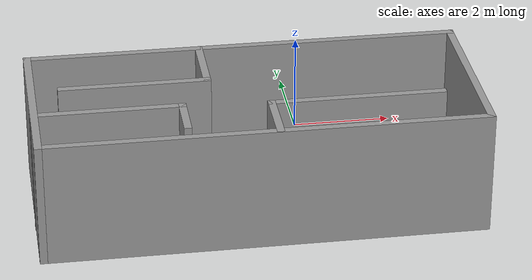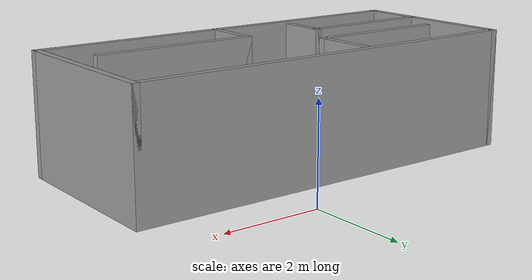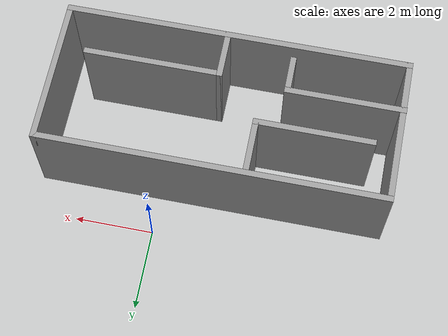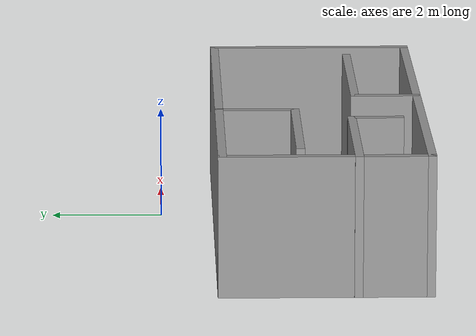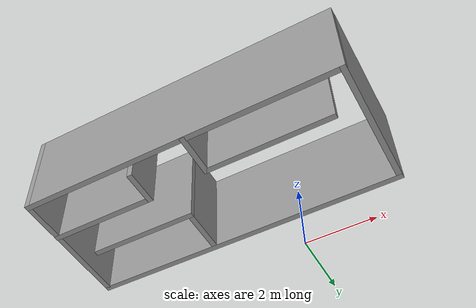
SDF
<?xml version='1.0'?>
<sdf version='1.7'>
  <model name='room'>
    <pose>-1.295 -2.3525 0 0 -0 0</pose>
    <link name='Wall_0'>
      <collision name='Wall_0_Collision'>
        <geometry>
          <box>
            <size>8.75 0.15 2.5</size>
          </box>
        </geometry>
        <pose>0 0 1.25 0 -0 0</pose>
      </collision>
      <visual name='Wall_0_Visual'>
        <pose>0 0 1.25 0 -0 0</pose>
        <geometry>
          <box>
            <size>8.75 0.15 2.5</size>
          </box>
        </geometry>
        <material>
          <script>
            <uri>file://media/materials/scripts/gazebo.material</uri>
            <name>Gazebo/Grey</name>
          </script>
          <ambient>1 1 1 1</ambient>
        </material>
        <meta>
          <layer>0</layer>
        </meta>
      </visual>
      <pose>0.005 1.3225 0 0 -0 0</pose>
    </link>
    <link name='Wall_1'>
      <collision name='Wall_1_Collision'>
        <geometry>
          <box>
            <size>3.75 0.15 2.5</size>
          </box>
        </geometry>
        <pose>0 0 1.25 0 -0 0</pose>
      </collision>
      <visual name='Wall_1_Visual'>
        <pose>0 0 1.25 0 -0 0</pose>
        <geometry>
          <box>
            <size>3.75 0.15 2.5</size>
          </box>
        </geometry>
        <material>
          <script>
            <uri>file://media/materials/scripts/gazebo.material</uri>
            <name>Gazebo/Grey</name>
          </script>
          <ambient>1 1 1 1</ambient>
        </material>
        <meta>
          <layer>0</layer>
        </meta>
      </visual>
      <pose>4.305 -0.4775 0 0 -0 -1.5708</pose>
    </link>
    <link name='Wall_11'>
      <collision name='Wall_11_Collision'>
        <geometry>
          <box>
            <size>1.25 0.15 2.5</size>
          </box>
        </geometry>
        <pose>0 0 1.25 0 -0 0</pose>
      </collision>
      <visual name='Wall_11_Visual'>
        <pose>0 0 1.25 0 -0 0</pose>
        <geometry>
          <box>
            <size>1.25 0.15 2.5</size>
          </box>
        </geometry>
        <material>
          <script>
            <uri>file://media/materials/scripts/gazebo.material</uri>
            <name>Gazebo/Grey</name>
          </script>
          <ambient>1 1 1 1</ambient>
        </material>
        <meta>
          <layer>0</layer>
        </meta>
      </visual>
      <pose>0.255 -1.7075 0 0 -0 1.5708</pose>
    </link>
    <link name='Wall_12'>
      <collision name='Wall_12_Collision'>
        <geometry>
          <box>
            <size>3.5 0.15 2.5</size>
          </box>
        </geometry>
        <pose>0 0 1.25 0 -0 0</pose>
      </collision>
      <visual name='Wall_12_Visual'>
        <pose>0 0 1.25 0 -0 0</pose>
        <geometry>
          <box>
            <size>3.5 0.15 2.5</size>
          </box>
        </geometry>
        <material>
          <script>
            <uri>file://media/materials/scripts/gazebo.material</uri>
            <name>Gazebo/Grey</name>
          </script>
          <ambient>1 1 1 1</ambient>
        </material>
        <meta>
          <layer>0</layer>
        </meta>
      </visual>
      <pose>1.93 -1.1575 0 0 -0 0</pose>
    </link>
    <link name='Wall_2'>
      <collision name='Wall_2_Collision'>
        <geometry>
          <box>
            <size>8.75 0.15 2.5</size>
          </box>
        </geometry>
        <pose>0 0 1.25 0 -0 0</pose>
      </collision>
      <visual name='Wall_2_Visual'>
        <pose>0 0 1.25 0 -0 0</pose>
        <geometry>
          <box>
            <size>8.75 0.15 2.5</size>
          </box>
        </geometry>
        <material>
          <script>
            <uri>file://media/materials/scripts/gazebo.material</uri>
            <name>Gazebo/Grey</name>
          </script>
          <ambient>1 1 1 1</ambient>
        </material>
        <meta>
          <layer>0</layer>
        </meta>
      </visual>
      <pose>0.005 -2.2775 0 0 -0 3.14159</pose>
    </link>
    <link name='Wall_3'>
      <collision name='Wall_3_Collision'>
        <geometry>
          <box>
            <size>3.75 0.15 2.5</size>
          </box>
        </geometry>
        <pose>0 0 1.25 0 -0 0</pose>
      </collision>
      <visual name='Wall_3_Visual'>
        <pose>0 0 1.25 0 -0 0</pose>
        <geometry>
          <box>
            <size>3.75 0.15 2.5</size>
          </box>
        </geometry>
        <material>
          <script>
            <uri>file://media/materials/scripts/gazebo.material</uri>
            <name>Gazebo/Grey</name>
          </script>
          <ambient>1 1 1 1</ambient>
        </material>
        <meta>
          <layer>0</layer>
        </meta>
      </visual>
      <pose>-4.295 -0.4775 0 0 -0 1.5708</pose>
    </link>
    <link name='Wall_5'>
      <collision name='Wall_5_Collision'>
        <geometry>
          <box>
            <size>1.5 0.15 2.5</size>
          </box>
        </geometry>
        <pose>0 0 1.25 0 -0 0</pose>
      </collision>
      <visual name='Wall_5_Visual'>
        <pose>0 0 1.25 0 -0 0</pose>
        <geometry>
          <box>
            <size>1.5 0.15 2.5</size>
          </box>
        </geometry>
        <material>
          <script>
            <uri>file://media/materials/scripts/gazebo.material</uri>
            <name>Gazebo/Grey</name>
          </script>
          <ambient>1 1 1 1</ambient>
        </material>
        <meta>
          <layer>0</layer>
        </meta>
      </visual>
      <pose>-0.855 0.6375 0 0 -0 -1.5708</pose>
    </link>
    <link name='Wall_6'>
      <collision name='Wall_6_Collision'>
        <geometry>
          <box>
            <size>3 0.15 2.5</size>
          </box>
        </geometry>
        <pose>0 0 1.25 0 -0 0</pose>
      </collision>
      <visual name='Wall_6_Visual'>
        <pose>0 0 1.25 0 -0 0</pose>
        <geometry>
          <box>
            <size>3 0.15 2.5</size>
          </box>
        </geometry>
        <material>
          <script>
            <uri>file://media/materials/scripts/gazebo.material</uri>
            <name>Gazebo/Grey</name>
          </script>
          <ambient>1 1 1 1</ambient>
        </material>
        <meta>
          <layer>0</layer>
        </meta>
      </visual>
      <pose>-2.28 -0.0375 0 0 -0 3.14159</pose>
    </link>
    <link name='Wall_8'>
      <collision name='Wall_8_Collision'>
        <geometry>
          <box>
            <size>3 0.15 2.5</size>
          </box>
        </geometry>
        <pose>0 0 1.25 0 -0 0</pose>
      </collision>
      <visual name='Wall_8_Visual'>
        <pose>0 0 1.25 0 -0 0</pose>
        <geometry>
          <box>
            <size>3 0.15 2.5</size>
          </box>
        </geometry>
        <material>
          <script>
            <uri>file://media/materials/scripts/gazebo.material</uri>
            <name>Gazebo/Grey</name>
          </script>
          <ambient>1 1 1 1</ambient>
        </material>
        <meta>
          <layer>0</layer>
        </meta>
      </visual>
      <pose>-2.88 -1.0275 0 0 -0 0</pose>
    </link>
    <link name='Wall_9'>
      <collision name='Wall_9_Collision'>
        <geometry>
          <box>
            <size>1 0.15 2.5</size>
          </box>
        </geometry>
        <pose>0 0 1.25 0 -0 0</pose>
      </collision>
      <visual name='Wall_9_Visual'>
        <pose>0 0 1.25 0 -0 0</pose>
        <geometry>
          <box>
            <size>1 0.15 2.5</size>
          </box>
        </geometry>
        <material>
          <script>
            <uri>file://media/materials/scripts/gazebo.material</uri>
            <name>Gazebo/Grey</name>
          </script>
          <ambient>1 1 1 1</ambient>
        </material>
        <meta>
          <layer>0</layer>
        </meta>
      </visual>
      <pose>-1.455 -1.4525 0 0 -0 -1.5708</pose>
    </link>
    <static>1</static>
  </model>
</sdf>
